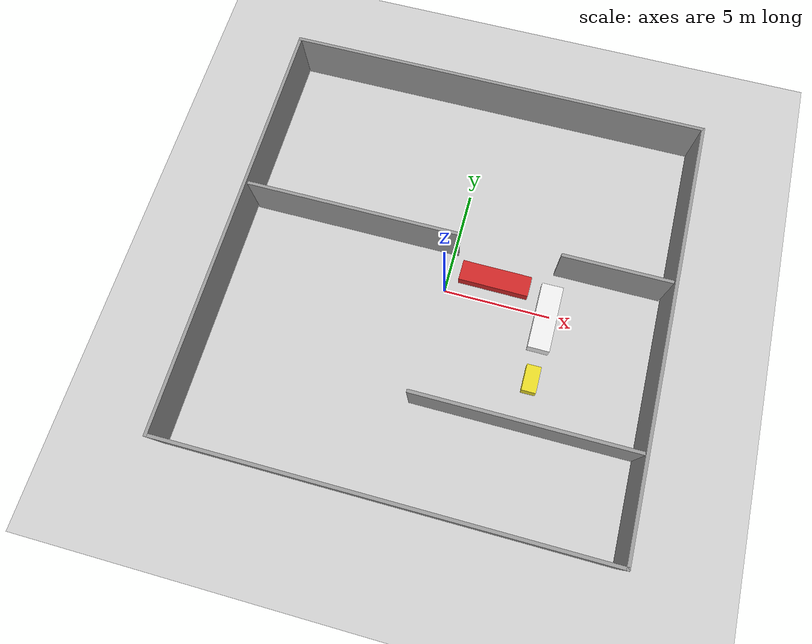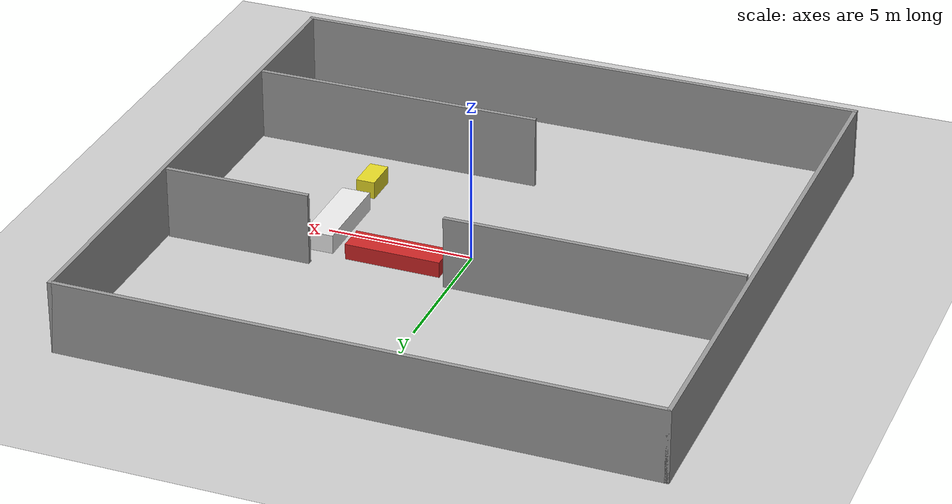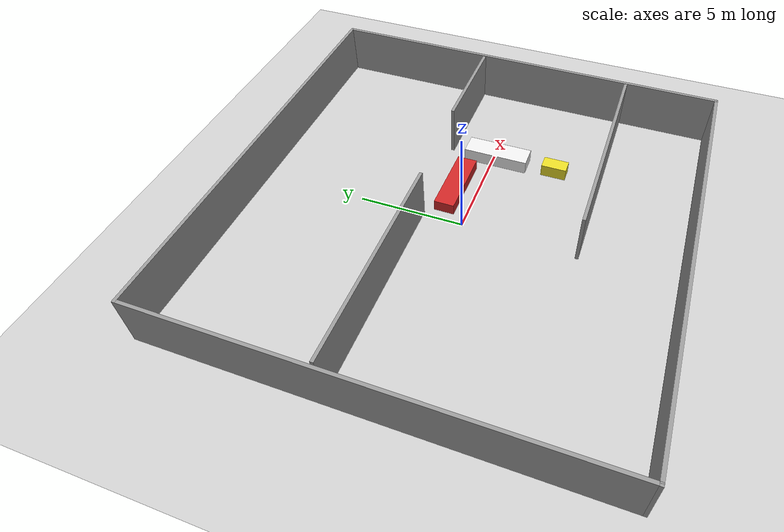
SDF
<sdf version="1.7">
 <world name="maze_world">
  <light name="sun" type="directional">
   <pose>0 0 10 0 -0 0</pose>
   <diffuse>0.8 0.8 0.8 1</diffuse>
   <specular>0.2 0.2 0.2 1</specular>
   <attenuation>
    <range>1000</range>
    <constant>0.9</constant>
    <linear>0.01</linear>
    <quadratic>0.001</quadratic>
   </attenuation>
   <direction>-0.5 0.1 -0.9</direction>
   <spot><inner_angle>0</inner_angle><outer_angle>0</outer_angle><falloff>0</falloff></spot>
  </light>
  <plugin name="gazebo_link_attacher" filename="libgazebo_link_attacher.so"/>
  <model name="ground_plane">
   <static>1</static>
   <link name="link">
    <collision name="collision">
     <geometry><plane><normal>0 0 1</normal><size>100 100</size></plane></geometry>
     <surface><friction><ode><mu>100</mu><mu2>50</mu2></ode></friction></surface>
    </collision>
    <visual name="visual">
     <cast_shadows>0</cast_shadows>
     <geometry><plane><normal>0 0 1</normal><size>100 100</size></plane></geometry>
     <material>
      <script><uri>file://media/materials/scripts/gazebo.material</uri><name>Gazebo/Grey</name></script>
     </material>
    </visual>
   </link>
  </model>
  <gravity>0 0 -9.8</gravity>
  <magnetic_field>6e-06 2.3e-05 -4.2e-05</magnetic_field>
  <atmosphere type="adiabatic"/>
  <physics type="ode">
   <max_step_size>0.001</max_step_size>
   <real_time_factor>1</real_time_factor>
   <real_time_update_rate>1000</real_time_update_rate>
  </physics>
  <scene><ambient>0.4 0.4 0.4 1</ambient><background>0.7 0.7 0.7 1</background><shadows>1</shadows></scene>
  <audio><device>default</device></audio>
  <spherical_coordinates>
   <surface_model>EARTH_WGS84</surface_model>
   <latitude_deg>0</latitude_deg>
   <longitude_deg>0</longitude_deg>
   <elevation>0</elevation>
   <heading_deg>0</heading_deg>
  </spherical_coordinates>
  <model name="maze_new">
   <link name="Wall_0">
    <pose>0.030536 9.925 0 0 -0 0</pose>
    <visual name="Wall_0_Visual">
     <pose>0 0 1.25 0 -0 0</pose>
     <geometry><box><size>20 0.15 2.5</size></box></geometry>
     <material>
      <script><uri>file://media/materials/scripts/gazebo.material</uri><name>Gazebo/Grey</name></script>
      <ambient>1 1 1 1</ambient>
      <shader type="pixel"/>
     </material>
    </visual>
    <collision name="Wall_0_Collision">
     <pose>0 0 1.25 0 -0 0</pose>
     <geometry><box><size>20 0.15 2.5</size></box></geometry>
     <surface>
      <friction>
       <ode><mu>1</mu><mu2>1</mu2><fdir1>0 0 0</fdir1><slip1>0</slip1><slip2>0</slip2></ode>
       <torsional>
        <coefficient>1</coefficient>
        <patch_radius>0</patch_radius>
        <surface_radius>0</surface_radius>
        <use_patch_radius>1</use_patch_radius>
        <ode><slip>0</slip></ode>
       </torsional>
      </friction>
      <bounce><restitution_coefficient>0</restitution_coefficient><threshold>1e+06</threshold></bounce>
      <contact>
       <collide_without_contact>0</collide_without_contact>
       <collide_without_contact_bitmask>1</collide_without_contact_bitmask>
       <collide_bitmask>1</collide_bitmask>
       <ode>
        <soft_cfm>0</soft_cfm>
        <soft_erp>0.2</soft_erp>
        <kp>1e+13</kp>
        <kd>1</kd>
        <max_vel>0.01</max_vel>
        <min_depth>0</min_depth>
       </ode>
       <bullet>
        <split_impulse>1</split_impulse>
        <split_impulse_penetration_threshold>-0.01</split_impulse_penetration_threshold>
        <soft_cfm>0</soft_cfm>
        <soft_erp>0.2</soft_erp>
        <kp>1e+13</kp>
        <kd>1</kd>
       </bullet>
      </contact>
     </surface>
    </collision>
   </link>
   <link name="Wall_1">
    <pose>9.95554 0 0 0 0 -1.5708</pose>
    <visual name="Wall_1_Visual">
     <pose>0 0 1.25 0 -0 0</pose>
     <geometry><box><size>20 0.15 2.5</size></box></geometry>
     <material>
      <script><uri>file://media/materials/scripts/gazebo.material</uri><name>Gazebo/Grey</name></script>
      <ambient>1 1 1 1</ambient>
      <shader type="pixel"/>
     </material>
    </visual>
    <collision name="Wall_1_Collision">
     <pose>0 0 1.25 0 -0 0</pose>
     <geometry><box><size>20 0.15 2.5</size></box></geometry>
     <surface>
      <friction>
       <ode><mu>1</mu><mu2>1</mu2><fdir1>0 0 0</fdir1><slip1>0</slip1><slip2>0</slip2></ode>
       <torsional>
        <coefficient>1</coefficient>
        <patch_radius>0</patch_radius>
        <surface_radius>0</surface_radius>
        <use_patch_radius>1</use_patch_radius>
        <ode><slip>0</slip></ode>
       </torsional>
      </friction>
      <bounce><restitution_coefficient>0</restitution_coefficient><threshold>1e+06</threshold></bounce>
      <contact>
       <collide_without_contact>0</collide_without_contact>
       <collide_without_contact_bitmask>1</collide_without_contact_bitmask>
       <collide_bitmask>1</collide_bitmask>
       <ode>
        <soft_cfm>0</soft_cfm>
        <soft_erp>0.2</soft_erp>
        <kp>1e+13</kp>
        <kd>1</kd>
        <max_vel>0.01</max_vel>
        <min_depth>0</min_depth>
       </ode>
       <bullet>
        <split_impulse>1</split_impulse>
        <split_impulse_penetration_threshold>-0.01</split_impulse_penetration_threshold>
        <soft_cfm>0</soft_cfm>
        <soft_erp>0.2</soft_erp>
        <kp>1e+13</kp>
        <kd>1</kd>
       </bullet>
      </contact>
     </surface>
    </collision>
   </link>
   <link name="Wall_2">
    <pose>0.030536 -9.925 0 0 -0 3.14159</pose>
    <visual name="Wall_2_Visual">
     <pose>0 0 1.25 0 -0 0</pose>
     <geometry><box><size>20 0.15 2.5</size></box></geometry>
     <material>
      <script><uri>file://media/materials/scripts/gazebo.material</uri><name>Gazebo/Grey</name></script>
      <ambient>1 1 1 1</ambient>
      <shader type="pixel"/>
     </material>
    </visual>
    <collision name="Wall_2_Collision">
     <pose>0 0 1.25 0 -0 0</pose>
     <geometry><box><size>20 0.15 2.5</size></box></geometry>
     <surface>
      <friction>
       <ode><mu>1</mu><mu2>1</mu2><fdir1>0 0 0</fdir1><slip1>0</slip1><slip2>0</slip2></ode>
       <torsional>
        <coefficient>1</coefficient>
        <patch_radius>0</patch_radius>
        <surface_radius>0</surface_radius>
        <use_patch_radius>1</use_patch_radius>
        <ode><slip>0</slip></ode>
       </torsional>
      </friction>
      <bounce><restitution_coefficient>0</restitution_coefficient><threshold>1e+06</threshold></bounce>
      <contact>
       <collide_without_contact>0</collide_without_contact>
       <collide_without_contact_bitmask>1</collide_without_contact_bitmask>
       <collide_bitmask>1</collide_bitmask>
       <ode>
        <soft_cfm>0</soft_cfm>
        <soft_erp>0.2</soft_erp>
        <kp>1e+13</kp>
        <kd>1</kd>
        <max_vel>0.01</max_vel>
        <min_depth>0</min_depth>
       </ode>
       <bullet>
        <split_impulse>1</split_impulse>
        <split_impulse_penetration_threshold>-0.01</split_impulse_penetration_threshold>
        <soft_cfm>0</soft_cfm>
        <soft_erp>0.2</soft_erp>
        <kp>1e+13</kp>
        <kd>1</kd>
       </bullet>
      </contact>
     </surface>
    </collision>
   </link>
   <link name="Wall_28">
    <pose>7.33323 2.05954 0 0 -0 0</pose>
    <inertial>
     <mass>1</mass>
     <inertia><ixx>1</ixx><ixy>0</ixy><ixz>0</ixz><iyy>1</iyy><iyz>0</iyz><izz>1</izz></inertia>
    </inertial>
    <visual name="Wall_28_Visual">
     <pose>0 0 1.25 0 -0 0</pose>
     <geometry><box><size>5 0.15 2.5</size></box></geometry>
     <material>
      <script><uri>file://media/materials/scripts/gazebo.material</uri><name>Gazebo/Grey</name></script>
      <ambient>1 1 1 1</ambient>
      <shader type="pixel"><normal_map>__default__</normal_map></shader>
      <diffuse>0.7 0.7 0.7 1</diffuse>
      <specular>0.01 0.01 0.01 1</specular>
      <emissive>0 0 0 1</emissive>
     </material>
    </visual>
    <collision name="Wall_28_Collision">
     <pose>0 0 1.25 0 -0 0</pose>
     <geometry><box><size>5 0.15 2.5</size></box></geometry>
     <surface>
      <friction>
       <ode><mu>1</mu><mu2>1</mu2><fdir1>0 0 0</fdir1><slip1>0</slip1><slip2>0</slip2></ode>
       <torsional>
        <coefficient>1</coefficient>
        <patch_radius>0</patch_radius>
        <surface_radius>0</surface_radius>
        <use_patch_radius>1</use_patch_radius>
        <ode><slip>0</slip></ode>
       </torsional>
      </friction>
      <bounce><restitution_coefficient>0</restitution_coefficient><threshold>1e+06</threshold></bounce>
      <contact>
       <collide_without_contact>0</collide_without_contact>
       <collide_without_contact_bitmask>1</collide_without_contact_bitmask>
       <collide_bitmask>1</collide_bitmask>
       <ode>
        <soft_cfm>0</soft_cfm>
        <soft_erp>0.2</soft_erp>
        <kp>1e+13</kp>
        <kd>1</kd>
        <max_vel>0.01</max_vel>
        <min_depth>0</min_depth>
       </ode>
       <bullet>
        <split_impulse>1</split_impulse>
        <split_impulse_penetration_threshold>-0.01</split_impulse_penetration_threshold>
        <soft_cfm>0</soft_cfm>
        <soft_erp>0.2</soft_erp>
        <kp>1e+13</kp>
        <kd>1</kd>
       </bullet>
      </contact>
     </surface>
    </collision>
   </link>
   <link name="Wall_3">
    <pose>-9.89446 0 0 0 -0 1.5708</pose>
    <visual name="Wall_3_Visual">
     <pose>0 0 1.25 0 -0 0</pose>
     <geometry><box><size>20 0.15 2.5</size></box></geometry>
     <material>
      <script><uri>file://media/materials/scripts/gazebo.material</uri><name>Gazebo/Grey</name></script>
      <ambient>1 1 1 1</ambient>
      <shader type="pixel"/>
     </material>
    </visual>
    <collision name="Wall_3_Collision">
     <pose>0 0 1.25 0 -0 0</pose>
     <geometry><box><size>20 0.15 2.5</size></box></geometry>
     <surface>
      <friction>
       <ode><mu>1</mu><mu2>1</mu2><fdir1>0 0 0</fdir1><slip1>0</slip1><slip2>0</slip2></ode>
       <torsional>
        <coefficient>1</coefficient>
        <patch_radius>0</patch_radius>
        <surface_radius>0</surface_radius>
        <use_patch_radius>1</use_patch_radius>
        <ode><slip>0</slip></ode>
       </torsional>
      </friction>
      <bounce><restitution_coefficient>0</restitution_coefficient><threshold>1e+06</threshold></bounce>
      <contact>
       <collide_without_contact>0</collide_without_contact>
       <collide_without_contact_bitmask>1</collide_without_contact_bitmask>
       <collide_bitmask>1</collide_bitmask>
       <ode>
        <soft_cfm>0</soft_cfm>
        <soft_erp>0.2</soft_erp>
        <kp>1e+13</kp>
        <kd>1</kd>
        <max_vel>0.01</max_vel>
        <min_depth>0</min_depth>
       </ode>
       <bullet>
        <split_impulse>1</split_impulse>
        <split_impulse_penetration_threshold>-0.01</split_impulse_penetration_threshold>
        <soft_cfm>0</soft_cfm>
        <soft_erp>0.2</soft_erp>
        <kp>1e+13</kp>
        <kd>1</kd>
       </bullet>
      </contact>
     </surface>
    </collision>
   </link>
   <link name="Wall_5">
    <pose>-4.73971 1.86906 0 0 -0 0</pose>
    <inertial>
     <mass>1</mass>
     <inertia><ixx>1</ixx><ixy>0</ixy><ixz>0</ixz><iyy>1</iyy><iyz>0</iyz><izz>1</izz></inertia>
    </inertial>
    <visual name="Wall_5_Visual">
     <pose>0 0 1.25 0 -0 0</pose>
     <geometry><box><size>10 0.15 2.5</size></box></geometry>
     <material>
      <script><uri>file://media/materials/scripts/gazebo.material</uri><name>Gazebo/Grey</name></script>
      <ambient>1 1 1 1</ambient>
      <shader type="pixel"><normal_map>__default__</normal_map></shader>
      <diffuse>0.7 0.7 0.7 1</diffuse>
      <specular>0.01 0.01 0.01 1</specular>
      <emissive>0 0 0 1</emissive>
     </material>
    </visual>
    <collision name="Wall_5_Collision">
     <pose>0 0 1.25 0 -0 0</pose>
     <geometry><box><size>10 0.15 2.5</size></box></geometry>
     <surface>
      <friction>
       <ode><mu>1</mu><mu2>1</mu2><fdir1>0 0 0</fdir1><slip1>0</slip1><slip2>0</slip2></ode>
       <torsional>
        <coefficient>1</coefficient>
        <patch_radius>0</patch_radius>
        <surface_radius>0</surface_radius>
        <use_patch_radius>1</use_patch_radius>
        <ode><slip>0</slip></ode>
       </torsional>
      </friction>
      <bounce><restitution_coefficient>0</restitution_coefficient><threshold>1e+06</threshold></bounce>
      <contact>
       <collide_without_contact>0</collide_without_contact>
       <collide_without_contact_bitmask>1</collide_without_contact_bitmask>
       <collide_bitmask>1</collide_bitmask>
       <ode>
        <soft_cfm>0</soft_cfm>
        <soft_erp>0.2</soft_erp>
        <kp>1e+13</kp>
        <kd>1</kd>
        <max_vel>0.01</max_vel>
        <min_depth>0</min_depth>
       </ode>
       <bullet>
        <split_impulse>1</split_impulse>
        <split_impulse_penetration_threshold>-0.01</split_impulse_penetration_threshold>
        <soft_cfm>0</soft_cfm>
        <soft_erp>0.2</soft_erp>
        <kp>1e+13</kp>
        <kd>1</kd>
       </bullet>
      </contact>
     </surface>
    </collision>
   </link>
   <link name="Wall_5_clone">
    <pose>4.86213 -5.47713 0 0 -0 0</pose>
    <inertial>
     <mass>1</mass>
     <inertia><ixx>1</ixx><ixy>0</ixy><ixz>0</ixz><iyy>1</iyy><iyz>0</iyz><izz>1</izz></inertia>
    </inertial>
    <visual name="Wall_5_Visual">
     <pose>0 0 1.25 0 -0 0</pose>
     <geometry><box><size>10 0.15 2.5</size></box></geometry>
     <material>
      <script><uri>file://media/materials/scripts/gazebo.material</uri><name>Gazebo/Grey</name></script>
      <ambient>1 1 1 1</ambient>
      <shader type="pixel"><normal_map>__default__</normal_map></shader>
      <diffuse>0.7 0.7 0.7 1</diffuse>
      <specular>0.01 0.01 0.01 1</specular>
      <emissive>0 0 0 1</emissive>
     </material>
    </visual>
    <collision name="Wall_5_Collision">
     <pose>0 0 1.25 0 -0 0</pose>
     <geometry><box><size>10 0.15 2.5</size></box></geometry>
     <surface>
      <friction>
       <ode><mu>1</mu><mu2>1</mu2><fdir1>0 0 0</fdir1><slip1>0</slip1><slip2>0</slip2></ode>
       <torsional>
        <coefficient>1</coefficient>
        <patch_radius>0</patch_radius>
        <surface_radius>0</surface_radius>
        <use_patch_radius>1</use_patch_radius>
        <ode><slip>0</slip></ode>
       </torsional>
      </friction>
      <bounce><restitution_coefficient>0</restitution_coefficient><threshold>1e+06</threshold></bounce>
      <contact>
       <collide_without_contact>0</collide_without_contact>
       <collide_without_contact_bitmask>1</collide_without_contact_bitmask>
       <collide_bitmask>1</collide_bitmask>
       <ode>
        <soft_cfm>0</soft_cfm>
        <soft_erp>0.2</soft_erp>
        <kp>1e+13</kp>
        <kd>1</kd>
        <max_vel>0.01</max_vel>
        <min_depth>0</min_depth>
       </ode>
       <bullet>
        <split_impulse>1</split_impulse>
        <split_impulse_penetration_threshold>-0.01</split_impulse_penetration_threshold>
        <soft_cfm>0</soft_cfm>
        <soft_erp>0.2</soft_erp>
        <kp>1e+13</kp>
        <kd>1</kd>
       </bullet>
      </contact>
     </surface>
    </collision>
   </link>
   <static>1</static>
   <pose>-0.078283 0.099 0 0 -0 0</pose>
  </model>
  <model name="unit_box">
   <pose>2.1515 1.05204 0.274275 0 -0 -0.006064</pose>
   <link name="link">
    <inertial>
     <mass>0.5</mass>
     <inertia>
      <ixx>0.166667</ixx>
      <ixy>0</ixy>
      <ixz>0</ixz>
      <iyy>0.166667</iyy>
      <iyz>0</iyz>
      <izz>0.166667</izz>
     </inertia>
    </inertial>
    <collision name="collision"><geometry><box><size>3.28411 0.956288 0.548548</size></box></geometry></collision>
    <visual name="visual">
     <geometry><box><size>3.28411 0.956288 0.548548</size></box></geometry>
     <material>
      <script><name>Gazebo/Red</name><uri>file://media/materials/scripts/gazebo.material</uri></script>
     </material>
    </visual>
   </link>
  </model>
  <model name="unit_box_0">
   <pose>4.80162 -0.211511 0.327935 1e-06 6e-06 -1e-06</pose>
   <link name="link">
    <inertial>
     <mass>0.5</mass>
     <inertia>
      <ixx>0.166667</ixx>
      <ixy>0</ixy>
      <ixz>0</ixz>
      <iyy>0.166667</iyy>
      <iyz>0</iyz>
      <izz>0.166667</izz>
     </inertia>
    </inertial>
    <collision name="collision"><geometry><box><size>1 3.11971 0.655879</size></box></geometry></collision>
    <visual name="visual">
     <geometry><box><size>1 3.11971 0.655879</size></box></geometry>
     <material>
      <script><name>Gazebo/White</name><uri>file://media/materials/scripts/gazebo.material</uri></script>
     </material>
    </visual>
   </link>
  </model>
  <model name="unit_box_1">
   <pose>4.79298 -3.13375 0.304721 0 -0 0.000292</pose>
   <link name="link">
    <inertial>
     <mass>0.5</mass>
     <inertia>
      <ixx>0.166667</ixx>
      <ixy>0</ixy>
      <ixz>0</ixz>
      <iyy>0.166667</iyy>
      <iyz>0</iyz>
      <izz>0.166667</izz>
     </inertia>
    </inertial>
    <collision name="collision"><geometry><box><size>0.655383 1.20951 0.609442</size></box></geometry></collision>
    <visual name="visual">
     <geometry><box><size>0.655383 1.20951 0.609442</size></box></geometry>
     <material>
      <script><name>Gazebo/Yellow</name><uri>file://media/materials/scripts/gazebo.material</uri></script>
     </material>
    </visual>
   </link>
  </model>
 </world>
</sdf>
